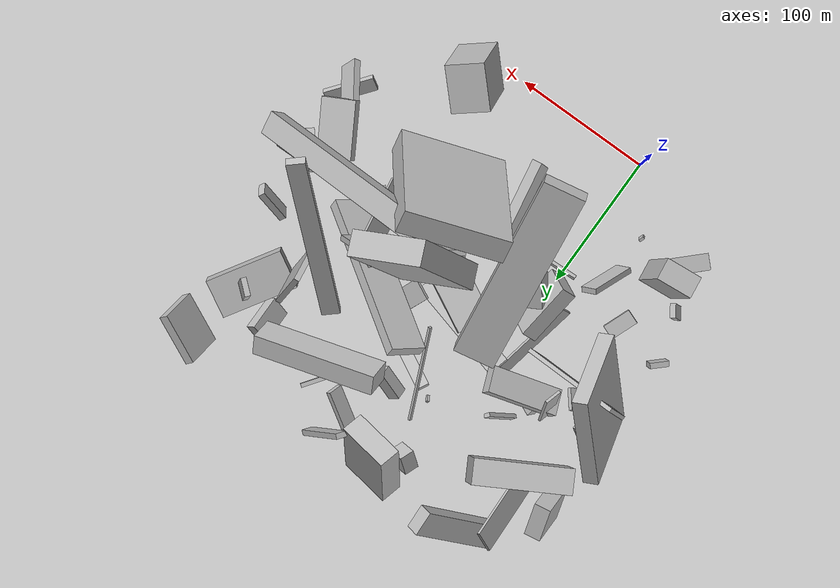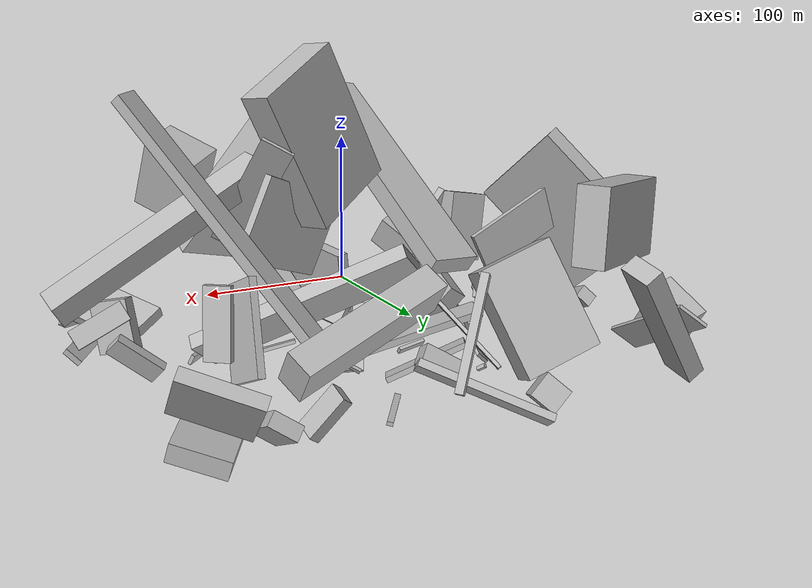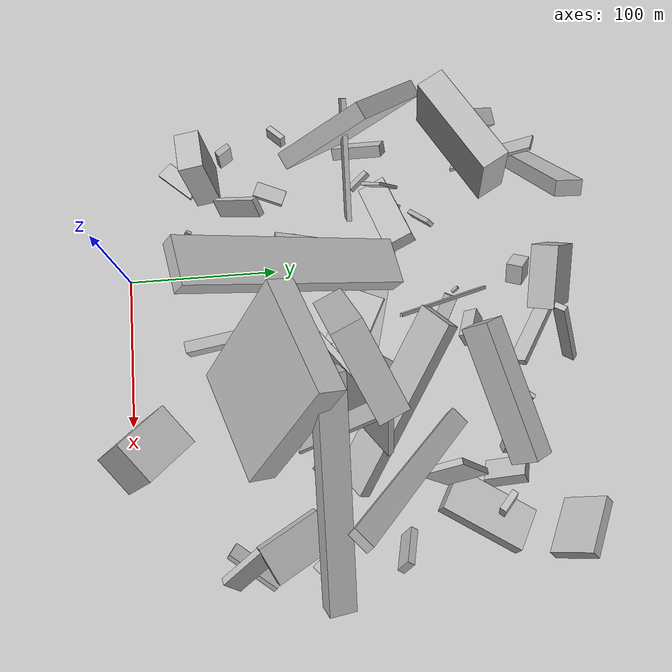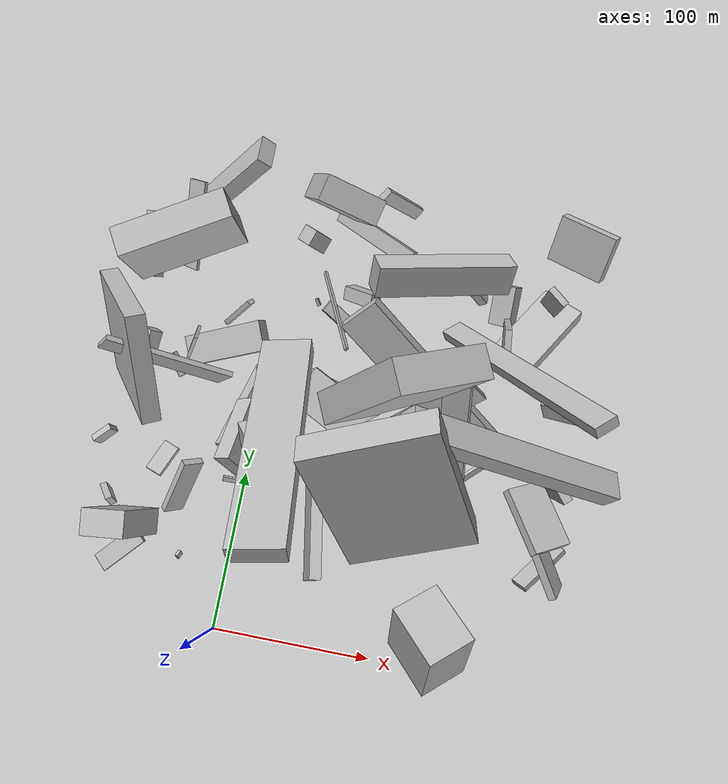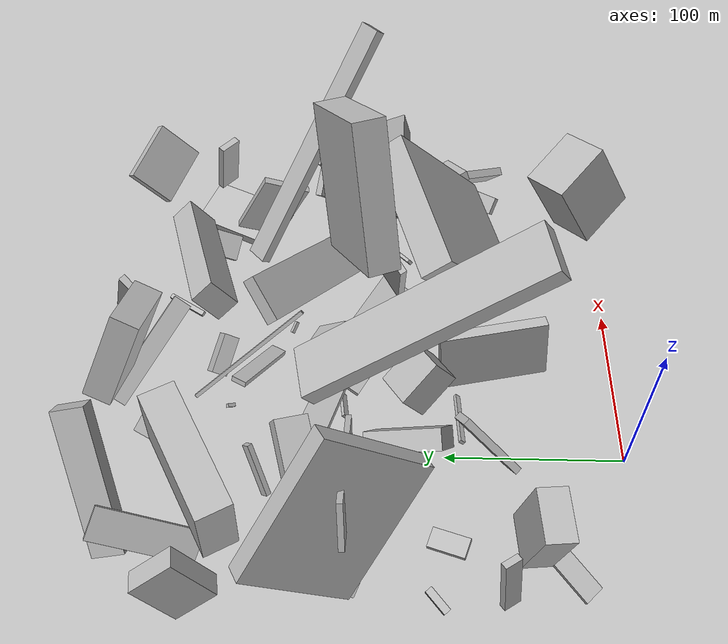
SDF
<sdf version="1.6">
 <world name="default">
  <model name="building_1">
   <static>0</static>
   <pose>-53.36776218531265 225.57407513473356 60.18739997213421 0.005135084856677283 -0.0797910758368502 0.5146011915310155</pose>
   <link name="link">
    <gravity>0</gravity>
    <pose>0 0 21.5 0 0 0</pose>
    <collision name="collision"><geometry><box><size>68 18 43</size></box></geometry></collision>
    <visual name="visual">
     <cast_shadows>0</cast_shadows>
     <geometry><box><size>68 18 43</size></box></geometry>
     <material>
      <script>
       <uri>model://HANNAS_wall/materials/scripts</uri>
       <uri>model://HANNAS_wall/materials/textures</uri>
       <name>vrc/HANNAS_wall</name>
      </script>
     </material>
    </visual>
   </link>
  </model>
  <model name="building_3">
   <static>0</static>
   <pose>198.75107616053248 79.6803190435957 21.185578072770227 0.4796749586401037 -0.6003453208512672 0.32458925809940675</pose>
   <link name="link">
    <gravity>0</gravity>
    <pose>0 0 7.5 0 0 0</pose>
    <collision name="collision"><geometry><box><size>5 33 15</size></box></geometry></collision>
    <visual name="visual">
     <cast_shadows>0</cast_shadows>
     <geometry><box><size>5 33 15</size></box></geometry>
     <material>
      <script>
       <uri>model://HANNAS_wall/materials/scripts</uri>
       <uri>model://HANNAS_wall/materials/textures</uri>
       <name>vrc/HANNAS_wall</name>
      </script>
     </material>
    </visual>
   </link>
  </model>
  <model name="building_8">
   <static>0</static>
   <pose>102.65849821187052 175.11031111418234 38.70035308174231 0.5453687690652936 -0.6083412496454647 0.6652943868384229</pose>
   <link name="link">
    <gravity>0</gravity>
    <pose>0 0 4.0 0 0 0</pose>
    <collision name="collision"><geometry><box><size>27 123 8</size></box></geometry></collision>
    <visual name="visual">
     <cast_shadows>0</cast_shadows>
     <geometry><box><size>27 123 8</size></box></geometry>
     <material>
      <script>
       <uri>model://HANNAS_wall/materials/scripts</uri>
       <uri>model://HANNAS_wall/materials/textures</uri>
       <name>vrc/HANNAS_wall</name>
      </script>
     </material>
    </visual>
   </link>
  </model>
  <model name="building_21">
   <static>0</static>
   <pose>110.93591590267224 76.60733210260125 53.27177881163373 0.3182430208783145 -0.6186728134676815 -1.4065448646998073</pose>
   <link name="link">
    <gravity>0</gravity>
    <pose>0 0 47.0 0 0 0</pose>
    <collision name="collision"><geometry><box><size>18 76 94</size></box></geometry></collision>
    <visual name="visual">
     <cast_shadows>0</cast_shadows>
     <geometry><box><size>18 76 94</size></box></geometry>
     <material>
      <script>
       <uri>model://HANNAS_wall/materials/scripts</uri>
       <uri>model://HANNAS_wall/materials/textures</uri>
       <name>vrc/HANNAS_wall</name>
      </script>
     </material>
    </visual>
   </link>
  </model>
  <model name="building_28">
   <static>0</static>
   <pose>101.53101039245655 234.386721790168 41.01600732419431 0.6299060999841484 -0.25945646761517815 -2.8453049823105316</pose>
   <link name="link">
    <gravity>0</gravity>
    <pose>0 0 10.5 0 0 0</pose>
    <collision name="collision"><geometry><box><size>90 15 21</size></box></geometry></collision>
    <visual name="visual">
     <cast_shadows>0</cast_shadows>
     <geometry><box><size>90 15 21</size></box></geometry>
     <material>
      <script>
       <uri>model://HANNAS_wall/materials/scripts</uri>
       <uri>model://HANNAS_wall/materials/textures</uri>
       <name>vrc/HANNAS_wall</name>
      </script>
     </material>
    </visual>
   </link>
  </model>
  <model name="building_35">
   <static>0</static>
   <pose>16.61682761326499 177.0175969989586 53.94088714772255 -0.963043995409521 0.08274046744521123 -2.9488357224455637</pose>
   <link name="link">
    <gravity>0</gravity>
    <pose>0 0 75.0 0 0 0</pose>
    <collision name="collision"><geometry><box><size>30 11 150</size></box></geometry></collision>
    <visual name="visual">
     <cast_shadows>0</cast_shadows>
     <geometry><box><size>30 11 150</size></box></geometry>
     <material>
      <script>
       <uri>model://HANNAS_wall/materials/scripts</uri>
       <uri>model://HANNAS_wall/materials/textures</uri>
       <name>vrc/HANNAS_wall</name>
      </script>
     </material>
    </visual>
   </link>
  </model>
  <model name="building_40">
   <static>0</static>
   <pose>159.2606686317211 123.14197695540746 84.69212079845002 1.9186344228700432 -0.5300730237977904 3.1108311479582635</pose>
   <link name="link">
    <gravity>0</gravity>
    <pose>0 0 8.5 0 0 0</pose>
    <collision name="collision"><geometry><box><size>150 13 17</size></box></geometry></collision>
    <visual name="visual">
     <cast_shadows>0</cast_shadows>
     <geometry><box><size>150 13 17</size></box></geometry>
     <material>
      <script>
       <uri>model://HANNAS_wall/materials/scripts</uri>
       <uri>model://HANNAS_wall/materials/textures</uri>
       <name>vrc/HANNAS_wall</name>
      </script>
     </material>
    </visual>
   </link>
  </model>
  <model name="building_54">
   <static>0</static>
   <pose>181.8676514341572 175.41729733745427 19.68815473272275 -0.5236336731921172 0.7681120469963143 -0.9246991510578163</pose>
   <link name="link">
    <gravity>0</gravity>
    <pose>0 0 13.5 0 0 0</pose>
    <collision name="collision"><geometry><box><size>11 5 27</size></box></geometry></collision>
    <visual name="visual">
     <cast_shadows>0</cast_shadows>
     <geometry><box><size>11 5 27</size></box></geometry>
     <material>
      <script>
       <uri>model://HANNAS_wall/materials/scripts</uri>
       <uri>model://HANNAS_wall/materials/textures</uri>
       <name>vrc/HANNAS_wall</name>
      </script>
     </material>
    </visual>
   </link>
  </model>
  <model name="building_61">
   <static>0</static>
   <pose>48.25286878235595 72.17020078281547 30.05929260214016 2.7585435378541177 -1.4101887134831845 0.5519163602482988</pose>
   <link name="link">
    <gravity>0</gravity>
    <pose>0 0 3.5 0 0 0</pose>
    <collision name="collision"><geometry><box><size>38 61 7</size></box></geometry></collision>
    <visual name="visual">
     <cast_shadows>0</cast_shadows>
     <geometry><box><size>38 61 7</size></box></geometry>
     <material>
      <script>
       <uri>model://HANNAS_wall/materials/scripts</uri>
       <uri>model://HANNAS_wall/materials/textures</uri>
       <name>vrc/HANNAS_wall</name>
      </script>
     </material>
    </visual>
   </link>
  </model>
  <model name="building_66">
   <static>0</static>
   <pose>-78.05641145028169 71.53232156924966 19.20280352145317 0.17397958655359533 -1.3687294361160585 0.409366198629548</pose>
   <link name="link">
    <gravity>0</gravity>
    <pose>0 0 2.0 0 0 0</pose>
    <collision name="collision"><geometry><box><size>36 10 4</size></box></geometry></collision>
    <visual name="visual">
     <cast_shadows>0</cast_shadows>
     <geometry><box><size>36 10 4</size></box></geometry>
     <material>
      <script>
       <uri>model://HANNAS_wall/materials/scripts</uri>
       <uri>model://HANNAS_wall/materials/textures</uri>
       <name>vrc/HANNAS_wall</name>
      </script>
     </material>
    </visual>
   </link>
  </model>
  <model name="building_68">
   <static>0</static>
   <pose>-21.83107361498681 169.05284238521926 27.191804475767267 -1.3329011319304773 -0.4172067426067291 0.2788204069491915</pose>
   <link name="link">
    <gravity>0</gravity>
    <pose>0 0 9.5 0 0 0</pose>
    <collision name="collision"><geometry><box><size>55 9 19</size></box></geometry></collision>
    <visual name="visual">
     <cast_shadows>0</cast_shadows>
     <geometry><box><size>55 9 19</size></box></geometry>
     <material>
      <script>
       <uri>model://HANNAS_wall/materials/scripts</uri>
       <uri>model://HANNAS_wall/materials/textures</uri>
       <name>vrc/HANNAS_wall</name>
      </script>
     </material>
    </visual>
   </link>
  </model>
  <model name="building_69">
   <static>0</static>
   <pose>144.716713322721 173.0198535050469 94.73106337022263 1.6790758403589527 -0.6931586198310506 2.2191635773913836</pose>
   <link name="link">
    <gravity>0</gravity>
    <pose>0 0 6.5 0 0 0</pose>
    <collision name="collision"><geometry><box><size>6 150 13</size></box></geometry></collision>
    <visual name="visual">
     <cast_shadows>0</cast_shadows>
     <geometry><box><size>6 150 13</size></box></geometry>
     <material>
      <script>
       <uri>model://HANNAS_wall/materials/scripts</uri>
       <uri>model://HANNAS_wall/materials/textures</uri>
       <name>vrc/HANNAS_wall</name>
      </script>
     </material>
    </visual>
   </link>
  </model>
  <model name="building_71">
   <static>0</static>
   <pose>-37.641706891555856 279.88515576375073 40.80216488281793 -0.3736389190792798 -0.8840930692906774 0.34830658059462927</pose>
   <link name="link">
    <gravity>0</gravity>
    <pose>0 0 5.0 0 0 0</pose>
    <collision name="collision"><geometry><box><size>80 18 10</size></box></geometry></collision>
    <visual name="visual">
     <cast_shadows>0</cast_shadows>
     <geometry><box><size>80 18 10</size></box></geometry>
     <material>
      <script>
       <uri>model://HANNAS_wall/materials/scripts</uri>
       <uri>model://HANNAS_wall/materials/textures</uri>
       <name>vrc/HANNAS_wall</name>
      </script>
     </material>
    </visual>
   </link>
  </model>
  <model name="building_76">
   <static>0</static>
   <pose>100.30201283076948 143.89131956683252 77.98191101141904 2.1476326550702627 -1.1629373063620656 -3.1396244967566234</pose>
   <link name="link">
    <gravity>0</gravity>
    <pose>0 0 2.0 0 0 0</pose>
    <collision name="collision"><geometry><box><size>46 74 4</size></box></geometry></collision>
    <visual name="visual">
     <cast_shadows>0</cast_shadows>
     <geometry><box><size>46 74 4</size></box></geometry>
     <material>
      <script>
       <uri>model://HANNAS_wall/materials/scripts</uri>
       <uri>model://HANNAS_wall/materials/textures</uri>
       <name>vrc/HANNAS_wall</name>
      </script>
     </material>
    </visual>
   </link>
  </model>
  <model name="building_77">
   <static>0</static>
   <pose>55.893056576074926 270.68057680887745 19.017828117942063 0.6235494192056638 -0.3771906883050145 -0.5699463628286029</pose>
   <link name="link">
    <gravity>0</gravity>
    <pose>0 0 2.0 0 0 0</pose>
    <collision name="collision"><geometry><box><size>68 11 4</size></box></geometry></collision>
    <visual name="visual">
     <cast_shadows>0</cast_shadows>
     <geometry><box><size>68 11 4</size></box></geometry>
     <material>
      <script>
       <uri>model://HANNAS_wall/materials/scripts</uri>
       <uri>model://HANNAS_wall/materials/textures</uri>
       <name>vrc/HANNAS_wall</name>
      </script>
     </material>
    </visual>
   </link>
  </model>
  <model name="building_80">
   <static>0</static>
   <pose>150.1084786514435 204.56701101617003 44.77803462018196 -1.7258124395621655 -0.42011984557755355 1.7308632940618938</pose>
   <link name="link">
    <gravity>0</gravity>
    <pose>0 0 2.0 0 0 0</pose>
    <collision name="collision"><geometry><box><size>28 48 4</size></box></geometry></collision>
    <visual name="visual">
     <cast_shadows>0</cast_shadows>
     <geometry><box><size>28 48 4</size></box></geometry>
     <material>
      <script>
       <uri>model://HANNAS_wall/materials/scripts</uri>
       <uri>model://HANNAS_wall/materials/textures</uri>
       <name>vrc/HANNAS_wall</name>
      </script>
     </material>
    </visual>
   </link>
  </model>
  <model name="building_86">
   <static>0</static>
   <pose>171.13391960652442 234.64274879236794 43.27141114211385 0.025303823608566884 -0.13691881675995074 0.8688041659400844</pose>
   <link name="link">
    <gravity>0</gravity>
    <pose>0 0 17.0 0 0 0</pose>
    <collision name="collision"><geometry><box><size>4 13 34</size></box></geometry></collision>
    <visual name="visual">
     <cast_shadows>0</cast_shadows>
     <geometry><box><size>4 13 34</size></box></geometry>
     <material>
      <script>
       <uri>model://HANNAS_wall/materials/scripts</uri>
       <uri>model://HANNAS_wall/materials/textures</uri>
       <name>vrc/HANNAS_wall</name>
      </script>
     </material>
    </visual>
   </link>
  </model>
  <model name="building_95">
   <static>0</static>
   <pose>136.32126585529647 34.70977068062794 84.58967165071245 -0.996205924533077 -1.080796136453192 1.7091394547000969</pose>
   <link name="link">
    <gravity>0</gravity>
    <pose>0 0 13.5 0 0 0</pose>
    <collision name="collision"><geometry><box><size>45 34 27</size></box></geometry></collision>
    <visual name="visual">
     <cast_shadows>0</cast_shadows>
     <geometry><box><size>45 34 27</size></box></geometry>
     <material>
      <script>
       <uri>model://HANNAS_wall/materials/scripts</uri>
       <uri>model://HANNAS_wall/materials/textures</uri>
       <name>vrc/HANNAS_wall</name>
      </script>
     </material>
    </visual>
   </link>
  </model>
  <model name="building_96">
   <static>0</static>
   <pose>-81.22834565462472 236.28625280654876 25.129851363802 -1.2189120335386516 -0.9432660817865177 1.4613693608311438</pose>
   <link name="link">
    <gravity>0</gravity>
    <pose>0 0 6.0 0 0 0</pose>
    <collision name="collision"><geometry><box><size>33 27 12</size></box></geometry></collision>
    <visual name="visual">
     <cast_shadows>0</cast_shadows>
     <geometry><box><size>33 27 12</size></box></geometry>
     <material>
      <script>
       <uri>model://HANNAS_wall/materials/scripts</uri>
       <uri>model://HANNAS_wall/materials/textures</uri>
       <name>vrc/HANNAS_wall</name>
      </script>
     </material>
    </visual>
   </link>
  </model>
  <model name="building_99">
   <static>0</static>
   <pose>185.92625620810335 267.4794803123719 31.370776294204227 0.44442635938538994 -0.6530556300421975 -2.3102272019659176</pose>
   <link name="link">
    <gravity>0</gravity>
    <pose>0 0 15.0 0 0 0</pose>
    <collision name="collision"><geometry><box><size>7 38 30</size></box></geometry></collision>
    <visual name="visual">
     <cast_shadows>0</cast_shadows>
     <geometry><box><size>7 38 30</size></box></geometry>
     <material>
      <script>
       <uri>model://HANNAS_wall/materials/scripts</uri>
       <uri>model://HANNAS_wall/materials/textures</uri>
       <name>vrc/HANNAS_wall</name>
      </script>
     </material>
    </visual>
   </link>
  </model>
  <model name="building_100">
   <static>0</static>
   <pose>78.32102854654107 91.78526639705524 22.069852737989564 0.5434381898414407 -0.1546068530086682 1.2475761199947524</pose>
   <link name="link">
    <gravity>0</gravity>
    <pose>0 0 10.5 0 0 0</pose>
    <collision name="collision"><geometry><box><size>11 17 21</size></box></geometry></collision>
    <visual name="visual">
     <cast_shadows>0</cast_shadows>
     <geometry><box><size>11 17 21</size></box></geometry>
     <material>
      <script>
       <uri>model://HANNAS_wall/materials/scripts</uri>
       <uri>model://HANNAS_wall/materials/textures</uri>
       <name>vrc/HANNAS_wall</name>
      </script>
     </material>
    </visual>
   </link>
  </model>
  <model name="building_101">
   <static>0</static>
   <pose>81.45658144735151 187.58107590421844 9.537307275435435 -2.143865880017114 -0.5194488251859757 -0.4693707088664595</pose>
   <link name="link">
    <gravity>0</gravity>
    <pose>0 0 1.0 0 0 0</pose>
    <collision name="collision"><geometry><box><size>7 2 2</size></box></geometry></collision>
    <visual name="visual">
     <cast_shadows>0</cast_shadows>
     <geometry><box><size>7 2 2</size></box></geometry>
     <material>
      <script>
       <uri>model://HANNAS_wall/materials/scripts</uri>
       <uri>model://HANNAS_wall/materials/textures</uri>
       <name>vrc/HANNAS_wall</name>
      </script>
     </material>
    </visual>
   </link>
  </model>
  <model name="building_105">
   <static>0</static>
   <pose>-67.16110091984183 132.88527577588485 51.60329485742245 0.8410681943479749 -0.319481746099414 -2.661896988755369</pose>
   <link name="link">
    <gravity>0</gravity>
    <pose>0 0 32.5 0 0 0</pose>
    <collision name="collision"><geometry><box><size>11 80 65</size></box></geometry></collision>
    <visual name="visual">
     <cast_shadows>0</cast_shadows>
     <geometry><box><size>11 80 65</size></box></geometry>
     <material>
      <script>
       <uri>model://HANNAS_wall/materials/scripts</uri>
       <uri>model://HANNAS_wall/materials/textures</uri>
       <name>vrc/HANNAS_wall</name>
      </script>
     </material>
    </visual>
   </link>
  </model>
  <model name="building_110">
   <static>0</static>
   <pose>-91.93895176396047 107.02397828629391 25.33589107603666 2.9063425497518263 0.23660243870230557 2.262020480280736</pose>
   <link name="link">
    <gravity>0</gravity>
    <pose>0 0 4.0 0 0 0</pose>
    <collision name="collision"><geometry><box><size>4 14 8</size></box></geometry></collision>
    <visual name="visual">
     <cast_shadows>0</cast_shadows>
     <geometry><box><size>4 14 8</size></box></geometry>
     <material>
      <script>
       <uri>model://HANNAS_wall/materials/scripts</uri>
       <uri>model://HANNAS_wall/materials/textures</uri>
       <name>vrc/HANNAS_wall</name>
      </script>
     </material>
    </visual>
   </link>
  </model>
  <model name="building_116">
   <static>0</static>
   <pose>184.0860208439916 220.06162916124575 14.10122422224774 -2.663261251723368 -1.2329030597180604 2.124243882308138</pose>
   <link name="link">
    <gravity>0</gravity>
    <pose>0 0 14.5 0 0 0</pose>
    <collision name="collision"><geometry><box><size>10 57 29</size></box></geometry></collision>
    <visual name="visual">
     <cast_shadows>0</cast_shadows>
     <geometry><box><size>10 57 29</size></box></geometry>
     <material>
      <script>
       <uri>model://HANNAS_wall/materials/scripts</uri>
       <uri>model://HANNAS_wall/materials/textures</uri>
       <name>vrc/HANNAS_wall</name>
      </script>
     </material>
    </visual>
   </link>
  </model>
  <model name="building_120">
   <static>0</static>
   <pose>2.7662741509849615 121.0643404616145 26.335459664180068 2.1837271387458563 -0.3065635609877434 -1.6754738760709056</pose>
   <link name="link">
    <gravity>0</gravity>
    <pose>0 0 6.0 0 0 0</pose>
    <collision name="collision"><geometry><box><size>43 26 12</size></box></geometry></collision>
    <visual name="visual">
     <cast_shadows>0</cast_shadows>
     <geometry><box><size>43 26 12</size></box></geometry>
     <material>
      <script>
       <uri>model://HANNAS_wall/materials/scripts</uri>
       <uri>model://HANNAS_wall/materials/textures</uri>
       <name>vrc/HANNAS_wall</name>
      </script>
     </material>
    </visual>
   </link>
  </model>
  <model name="building_123">
   <static>0</static>
   <pose>82.75763177641034 158.8817054913843 127.01717790140307 1.7463149724909488 -1.0943189522210346 0.2613005696470518</pose>
   <link name="link">
    <gravity>0</gravity>
    <pose>0 0 9.0 0 0 0</pose>
    <collision name="collision"><geometry><box><size>80 54 18</size></box></geometry></collision>
    <visual name="visual">
     <cast_shadows>0</cast_shadows>
     <geometry><box><size>80 54 18</size></box></geometry>
     <material>
      <script>
       <uri>model://HANNAS_wall/materials/scripts</uri>
       <uri>model://HANNAS_wall/materials/textures</uri>
       <name>vrc/HANNAS_wall</name>
      </script>
     </material>
    </visual>
   </link>
  </model>
  <model name="building_128">
   <static>0</static>
   <pose>-17.25056254982185 151.8076247022937 49.894114149132164 1.0905027987862734 -0.04605393903159527 -1.5699738683502613</pose>
   <link name="link">
    <gravity>0</gravity>
    <pose>0 0 37.5 0 0 0</pose>
    <collision name="collision"><geometry><box><size>3 26 75</size></box></geometry></collision>
    <visual name="visual">
     <cast_shadows>0</cast_shadows>
     <geometry><box><size>3 26 75</size></box></geometry>
     <material>
      <script>
       <uri>model://HANNAS_wall/materials/scripts</uri>
       <uri>model://HANNAS_wall/materials/textures</uri>
       <name>vrc/HANNAS_wall</name>
      </script>
     </material>
    </visual>
   </link>
  </model>
  <model name="building_130">
   <static>0</static>
   <pose>-17.0846916620351 114.30873471968417 19.419594150800442 -2.074241599401539 0.7209420970600462 -0.5321922868707994</pose>
   <link name="link">
    <gravity>0</gravity>
    <pose>0 0 33.0 0 0 0</pose>
    <collision name="collision"><geometry><box><size>2 9 66</size></box></geometry></collision>
    <visual name="visual">
     <cast_shadows>0</cast_shadows>
     <geometry><box><size>2 9 66</size></box></geometry>
     <material>
      <script>
       <uri>model://HANNAS_wall/materials/scripts</uri>
       <uri>model://HANNAS_wall/materials/textures</uri>
       <name>vrc/HANNAS_wall</name>
      </script>
     </material>
    </visual>
   </link>
  </model>
  <model name="building_131">
   <static>0</static>
   <pose>147.63194283558042 254.20339329657307 15.715379929078722 -2.2220772963687434 -0.7985183786190756 -2.6069816826753462</pose>
   <link name="link">
    <gravity>0</gravity>
    <pose>0 0 13.5 0 0 0</pose>
    <collision name="collision"><geometry><box><size>8 16 27</size></box></geometry></collision>
    <visual name="visual">
     <cast_shadows>0</cast_shadows>
     <geometry><box><size>8 16 27</size></box></geometry>
     <material>
      <script>
       <uri>model://HANNAS_wall/materials/scripts</uri>
       <uri>model://HANNAS_wall/materials/textures</uri>
       <name>vrc/HANNAS_wall</name>
      </script>
     </material>
    </visual>
   </link>
  </model>
  <model name="building_132">
   <static>0</static>
   <pose>123.8590788031019 248.04449941885778 13.98709961609223 0.9265519837999532 0.3138825484323095 1.607185182651236</pose>
   <link name="link">
    <gravity>0</gravity>
    <pose>0 0 3.0 0 0 0</pose>
    <collision name="collision"><geometry><box><size>12 24 6</size></box></geometry></collision>
    <visual name="visual">
     <cast_shadows>0</cast_shadows>
     <geometry><box><size>12 24 6</size></box></geometry>
     <material>
      <script>
       <uri>model://HANNAS_wall/materials/scripts</uri>
       <uri>model://HANNAS_wall/materials/textures</uri>
       <name>vrc/HANNAS_wall</name>
      </script>
     </material>
    </visual>
   </link>
  </model>
  <model name="building_134">
   <static>0</static>
   <pose>-70.24850119772972 255.0261795730985 23.391175182053914 0.8201441761564853 -0.486194016398132 1.577502596081623</pose>
   <link name="link">
    <gravity>0</gravity>
    <pose>0 0 9.0 0 0 0</pose>
    <collision name="collision"><geometry><box><size>57 2 18</size></box></geometry></collision>
    <visual name="visual">
     <cast_shadows>0</cast_shadows>
     <geometry><box><size>57 2 18</size></box></geometry>
     <material>
      <script>
       <uri>model://HANNAS_wall/materials/scripts</uri>
       <uri>model://HANNAS_wall/materials/textures</uri>
       <name>vrc/HANNAS_wall</name>
      </script>
     </material>
    </visual>
   </link>
  </model>
  <model name="building_144">
   <static>0</static>
   <pose>-48.63169016496398 181.44249881288553 18.83278070268338 -0.3307815887790831 0.49151204597085607 -1.8697076204499576</pose>
   <link name="link">
    <gravity>0</gravity>
    <pose>0 0 12.5 0 0 0</pose>
    <collision name="collision"><geometry><box><size>14 2 25</size></box></geometry></collision>
    <visual name="visual">
     <cast_shadows>0</cast_shadows>
     <geometry><box><size>14 2 25</size></box></geometry>
     <material>
      <script>
       <uri>model://HANNAS_wall/materials/scripts</uri>
       <uri>model://HANNAS_wall/materials/textures</uri>
       <name>vrc/HANNAS_wall</name>
      </script>
     </material>
    </visual>
   </link>
  </model>
  <model name="building_147">
   <static>0</static>
   <pose>69.06704578013968 172.05391524408645 10.98370194433824 1.6096756765160534 0.7146080720124205 1.1495276205265734</pose>
   <link name="link">
    <gravity>0</gravity>
    <pose>0 0 8.0 0 0 0</pose>
    <collision name="collision"><geometry><box><size>23 2 16</size></box></geometry></collision>
    <visual name="visual">
     <cast_shadows>0</cast_shadows>
     <geometry><box><size>23 2 16</size></box></geometry>
     <material>
      <script>
       <uri>model://HANNAS_wall/materials/scripts</uri>
       <uri>model://HANNAS_wall/materials/textures</uri>
       <name>vrc/HANNAS_wall</name>
      </script>
     </material>
    </visual>
   </link>
  </model>
  <model name="building_152">
   <static>0</static>
   <pose>37.15009131144617 171.98267400626898 14.72088191060895 -1.5535607504057238 -0.26605776770707507 2.88915497331432</pose>
   <link name="link">
    <gravity>0</gravity>
    <pose>0 0 8.0 0 0 0</pose>
    <collision name="collision"><geometry><box><size>80 4 16</size></box></geometry></collision>
    <visual name="visual">
     <cast_shadows>0</cast_shadows>
     <geometry><box><size>80 4 16</size></box></geometry>
     <material>
      <script>
       <uri>model://HANNAS_wall/materials/scripts</uri>
       <uri>model://HANNAS_wall/materials/textures</uri>
       <name>vrc/HANNAS_wall</name>
      </script>
     </material>
    </visual>
   </link>
  </model>
  <model name="building_158">
   <static>0</static>
   <pose>79.12887880903972 287.2112815276695 29.904324266721517 -0.15013269761229203 -0.45610809771608873 0.911082300610371</pose>
   <link name="link">
    <gravity>0</gravity>
    <pose>0 0 27.5 0 0 0</pose>
    <collision name="collision"><geometry><box><size>8 4 55</size></box></geometry></collision>
    <visual name="visual">
     <cast_shadows>0</cast_shadows>
     <geometry><box><size>8 4 55</size></box></geometry>
     <material>
      <script>
       <uri>model://HANNAS_wall/materials/scripts</uri>
       <uri>model://HANNAS_wall/materials/textures</uri>
       <name>vrc/HANNAS_wall</name>
      </script>
     </material>
    </visual>
   </link>
  </model>
  <model name="building_159">
   <static>0</static>
   <pose>105.39765411258874 133.73589662921412 6.26494449467561 0.23582408520816733 -0.17290632359513664 1.224179978366894</pose>
   <link name="link">
    <gravity>0</gravity>
    <pose>0 0 1.0 0 0 0</pose>
    <collision name="collision"><geometry><box><size>5 25 2</size></box></geometry></collision>
    <visual name="visual">
     <cast_shadows>0</cast_shadows>
     <geometry><box><size>5 25 2</size></box></geometry>
     <material>
      <script>
       <uri>model://HANNAS_wall/materials/scripts</uri>
       <uri>model://HANNAS_wall/materials/textures</uri>
       <name>vrc/HANNAS_wall</name>
      </script>
     </material>
    </visual>
   </link>
  </model>
  <model name="building_162">
   <static>0</static>
   <pose>-35.786969704040715 184.16731218360616 10.60647583548509 -2.4513310368778853 -0.31926264247470343 2.718556037399454</pose>
   <link name="link">
    <gravity>0</gravity>
    <pose>0 0 4.0 0 0 0</pose>
    <collision name="collision"><geometry><box><size>8 9 8</size></box></geometry></collision>
    <visual name="visual">
     <cast_shadows>0</cast_shadows>
     <geometry><box><size>8 9 8</size></box></geometry>
     <material>
      <script>
       <uri>model://HANNAS_wall/materials/scripts</uri>
       <uri>model://HANNAS_wall/materials/textures</uri>
       <name>vrc/HANNAS_wall</name>
      </script>
     </material>
    </visual>
   </link>
  </model>
  <model name="building_164">
   <static>0</static>
   <pose>-31.73710454002525 69.23872572869112 48.26859019883457 0.7560128797627421 0.415869724377767 2.3354869756774628</pose>
   <link name="link">
    <gravity>0</gravity>
    <pose>0 0 20.0 0 0 0</pose>
    <collision name="collision"><geometry><box><size>4 12 40</size></box></geometry></collision>
    <visual name="visual">
     <cast_shadows>0</cast_shadows>
     <geometry><box><size>4 12 40</size></box></geometry>
     <material>
      <script>
       <uri>model://HANNAS_wall/materials/scripts</uri>
       <uri>model://HANNAS_wall/materials/textures</uri>
       <name>vrc/HANNAS_wall</name>
      </script>
     </material>
    </visual>
   </link>
  </model>
  <model name="building_165">
   <static>0</static>
   <pose>-80.50423605520352 164.5352678751173 14.819807502530711 -0.47306015619675124 -0.6881677861463842 -2.9864832199433162</pose>
   <link name="link">
    <gravity>0</gravity>
    <pose>0 0 5.0 0 0 0</pose>
    <collision name="collision"><geometry><box><size>8 35 10</size></box></geometry></collision>
    <visual name="visual">
     <cast_shadows>0</cast_shadows>
     <geometry><box><size>8 35 10</size></box></geometry>
     <material>
      <script>
       <uri>model://HANNAS_wall/materials/scripts</uri>
       <uri>model://HANNAS_wall/materials/textures</uri>
       <name>vrc/HANNAS_wall</name>
      </script>
     </material>
    </visual>
   </link>
  </model>
  <model name="building_172">
   <static>0</static>
   <pose>70.62790207340268 131.19605097554842 16.097893593051307 -0.5466544869776707 0.2844980723173961 2.246259875672515</pose>
   <link name="link">
    <gravity>0</gravity>
    <pose>0 0 8.0 0 0 0</pose>
    <collision name="collision"><geometry><box><size>14 6 16</size></box></geometry></collision>
    <visual name="visual">
     <cast_shadows>0</cast_shadows>
     <geometry><box><size>14 6 16</size></box></geometry>
     <material>
      <script>
       <uri>model://HANNAS_wall/materials/scripts</uri>
       <uri>model://HANNAS_wall/materials/textures</uri>
       <name>vrc/HANNAS_wall</name>
      </script>
     </material>
    </visual>
   </link>
  </model>
  <model name="building_173">
   <static>0</static>
   <pose>-31.85245680285756 39.45986302267002 4.277583077687249 2.432134087836567 -1.0349869981542252 1.9968444903566254</pose>
   <link name="link">
    <gravity>0</gravity>
    <pose>0 0 2.0 0 0 0</pose>
    <collision name="collision"><geometry><box><size>4 2 4</size></box></geometry></collision>
    <visual name="visual">
     <cast_shadows>0</cast_shadows>
     <geometry><box><size>4 2 4</size></box></geometry>
     <material>
      <script>
       <uri>model://HANNAS_wall/materials/scripts</uri>
       <uri>model://HANNAS_wall/materials/textures</uri>
       <name>vrc/HANNAS_wall</name>
      </script>
     </material>
    </visual>
   </link>
  </model>
  <model name="building_174">
   <static>0</static>
   <pose>53.47248147888069 223.39375102025693 17.533730867356876 0.7646336921199954 -0.7684886348387754 -2.494500856785539</pose>
   <link name="link">
    <gravity>0</gravity>
    <pose>0 0 4.5 0 0 0</pose>
    <collision name="collision"><geometry><box><size>10 23 9</size></box></geometry></collision>
    <visual name="visual">
     <cast_shadows>0</cast_shadows>
     <geometry><box><size>10 23 9</size></box></geometry>
     <material>
      <script>
       <uri>model://HANNAS_wall/materials/scripts</uri>
       <uri>model://HANNAS_wall/materials/textures</uri>
       <name>vrc/HANNAS_wall</name>
      </script>
     </material>
    </visual>
   </link>
  </model>
  <model name="building_175">
   <static>0</static>
   <pose>-60.58295880259891 47.868425923369585 42.188849573103525 1.1114833369809758 -1.3681489709553527 -2.5665389874598015</pose>
   <link name="link">
    <gravity>0</gravity>
    <pose>0 0 8.0 0 0 0</pose>
    <collision name="collision"><geometry><box><size>45 27 16</size></box></geometry></collision>
    <visual name="visual">
     <cast_shadows>0</cast_shadows>
     <geometry><box><size>45 27 16</size></box></geometry>
     <material>
      <script>
       <uri>model://HANNAS_wall/materials/scripts</uri>
       <uri>model://HANNAS_wall/materials/textures</uri>
       <name>vrc/HANNAS_wall</name>
      </script>
     </material>
    </visual>
   </link>
  </model>
  <model name="building_185">
   <static>0</static>
   <pose>200.82701367919827 135.13169119285004 34.49498830582745 -0.7476005733130332 -0.9064738507509321 -0.9400358544226318</pose>
   <link name="link">
    <gravity>0</gravity>
    <pose>0 0 1.0 0 0 0</pose>
    <collision name="collision"><geometry><box><size>11 30 2</size></box></geometry></collision>
    <visual name="visual">
     <cast_shadows>0</cast_shadows>
     <geometry><box><size>11 30 2</size></box></geometry>
     <material>
      <script>
       <uri>model://HANNAS_wall/materials/scripts</uri>
       <uri>model://HANNAS_wall/materials/textures</uri>
       <name>vrc/HANNAS_wall</name>
      </script>
     </material>
    </visual>
   </link>
  </model>
  <model name="building_186">
   <static>0</static>
   <pose>-21.899657124357468 202.2404696887611 22.761847079117118 0.9060176675530105 0.20531531547856852 -0.7790579212361646</pose>
   <link name="link">
    <gravity>0</gravity>
    <pose>0 0 2.5 0 0 0</pose>
    <collision name="collision"><geometry><box><size>3 30 5</size></box></geometry></collision>
    <visual name="visual">
     <cast_shadows>0</cast_shadows>
     <geometry><box><size>3 30 5</size></box></geometry>
     <material>
      <script>
       <uri>model://HANNAS_wall/materials/scripts</uri>
       <uri>model://HANNAS_wall/materials/textures</uri>
       <name>vrc/HANNAS_wall</name>
      </script>
     </material>
    </visual>
   </link>
  </model>
  <model name="building_190">
   <static>0</static>
   <pose>144.9973137746335 126.84114127194974 9.586819966280805 2.085074480314259 -0.03601990643628046 -2.3850486111681746</pose>
   <link name="link">
    <gravity>0</gravity>
    <pose>0 0 1.0 0 0 0</pose>
    <collision name="collision"><geometry><box><size>26 6 2</size></box></geometry></collision>
    <visual name="visual">
     <cast_shadows>0</cast_shadows>
     <geometry><box><size>26 6 2</size></box></geometry>
     <material>
      <script>
       <uri>model://HANNAS_wall/materials/scripts</uri>
       <uri>model://HANNAS_wall/materials/textures</uri>
       <name>vrc/HANNAS_wall</name>
      </script>
     </material>
    </visual>
   </link>
  </model>
  <model name="building_192">
   <static>0</static>
   <pose>39.68611486442458 210.26958287325056 40.82709316999124 2.4464258103010312 -0.6105127433370322 -1.1645531572279197</pose>
   <link name="link">
    <gravity>0</gravity>
    <pose>0 0 1.0 0 0 0</pose>
    <collision name="collision"><geometry><box><size>80 2 2</size></box></geometry></collision>
    <visual name="visual">
     <cast_shadows>0</cast_shadows>
     <geometry><box><size>80 2 2</size></box></geometry>
     <material>
      <script>
       <uri>model://HANNAS_wall/materials/scripts</uri>
       <uri>model://HANNAS_wall/materials/textures</uri>
       <name>vrc/HANNAS_wall</name>
      </script>
     </material>
    </visual>
   </link>
  </model>
  <model name="building_195">
   <static>0</static>
   <pose>49.452493868916555 206.9593724525231 13.047607384968492 -0.023460802431033097 -0.4502869226525126 2.6663658292484005</pose>
   <link name="link">
    <gravity>0</gravity>
    <pose>0 0 1.5 0 0 0</pose>
    <collision name="collision"><geometry><box><size>45 9 3</size></box></geometry></collision>
    <visual name="visual">
     <cast_shadows>0</cast_shadows>
     <geometry><box><size>45 9 3</size></box></geometry>
     <material>
      <script>
       <uri>model://HANNAS_wall/materials/scripts</uri>
       <uri>model://HANNAS_wall/materials/textures</uri>
       <name>vrc/HANNAS_wall</name>
      </script>
     </material>
    </visual>
   </link>
  </model>
  <model name="building_197">
   <static>0</static>
   <pose>-0.025442064927895247 114.52741545829831 6.161088037499722 1.6310990344190857 -0.6054267830001285 -1.8009297935421855</pose>
   <link name="link">
    <gravity>0</gravity>
    <pose>0 0 1.0 0 0 0</pose>
    <collision name="collision"><geometry><box><size>2 4 2</size></box></geometry></collision>
    <visual name="visual">
     <cast_shadows>0</cast_shadows>
     <geometry><box><size>2 4 2</size></box></geometry>
     <material>
      <script>
       <uri>model://HANNAS_wall/materials/scripts</uri>
       <uri>model://HANNAS_wall/materials/textures</uri>
       <name>vrc/HANNAS_wall</name>
      </script>
     </material>
    </visual>
   </link>
  </model>
  <model name="building_198">
   <static>0</static>
   <pose>18.389579120244257 260.54627134439187 15.131370484219914 2.667428740955498 -0.8011546219859309 3.1120409913090246</pose>
   <link name="link">
    <gravity>0</gravity>
    <pose>0 0 7.5 0 0 0</pose>
    <collision name="collision"><geometry><box><size>14 11 15</size></box></geometry></collision>
    <visual name="visual">
     <cast_shadows>0</cast_shadows>
     <geometry><box><size>14 11 15</size></box></geometry>
     <material>
      <script>
       <uri>model://HANNAS_wall/materials/scripts</uri>
       <uri>model://HANNAS_wall/materials/textures</uri>
       <name>vrc/HANNAS_wall</name>
      </script>
     </material>
    </visual>
   </link>
  </model>
  <model name="building_199">
   <static>0</static>
   <pose>30.292970160500577 267.4699851545795 56.45540325018871 -0.8258105710551893 -1.063799062947648 -0.9391698531663575</pose>
   <link name="link">
    <gravity>0</gravity>
    <pose>0 0 8.0 0 0 0</pose>
    <collision name="collision"><geometry><box><size>54 38 16</size></box></geometry></collision>
    <visual name="visual">
     <cast_shadows>0</cast_shadows>
     <geometry><box><size>54 38 16</size></box></geometry>
     <material>
      <script>
       <uri>model://HANNAS_wall/materials/scripts</uri>
       <uri>model://HANNAS_wall/materials/textures</uri>
       <name>vrc/HANNAS_wall</name>
      </script>
     </material>
    </visual>
   </link>
  </model>
  <model name="building_201">
   <static>0</static>
   <pose>101.8610918023011 265.1160994117263 12.070957777250605 -1.0988418283706944 -1.3401964280535295 2.058757604933624</pose>
   <link name="link">
    <gravity>0</gravity>
    <pose>0 0 13.5 0 0 0</pose>
    <collision name="collision"><geometry><box><size>2 3 27</size></box></geometry></collision>
    <visual name="visual">
     <cast_shadows>0</cast_shadows>
     <geometry><box><size>2 3 27</size></box></geometry>
     <material>
      <script>
       <uri>model://HANNAS_wall/materials/scripts</uri>
       <uri>model://HANNAS_wall/materials/textures</uri>
       <name>vrc/HANNAS_wall</name>
      </script>
     </material>
    </visual>
   </link>
  </model>
  <model name="building_210">
   <static>0</static>
   <pose>-63.245758315239726 34.11492669335966 9.840544758802492 -1.5798770636270996 -0.3399169841436623 0.7807270239246444</pose>
   <link name="link">
    <gravity>0</gravity>
    <pose>0 0 6.0 0 0 0</pose>
    <collision name="collision"><geometry><box><size>35 2 12</size></box></geometry></collision>
    <visual name="visual">
     <cast_shadows>0</cast_shadows>
     <geometry><box><size>35 2 12</size></box></geometry>
     <material>
      <script>
       <uri>model://HANNAS_wall/materials/scripts</uri>
       <uri>model://HANNAS_wall/materials/textures</uri>
       <name>vrc/HANNAS_wall</name>
      </script>
     </material>
    </visual>
   </link>
  </model>
  <model name="building_216">
   <static>0</static>
   <pose>125.00180346859327 116.01242104086342 65.24475912461197 -0.5657808347900947 0.47753798879660597 0.8348133179411596</pose>
   <link name="link">
    <gravity>0</gravity>
    <pose>0 0 40.0 0 0 0</pose>
    <collision name="collision"><geometry><box><size>2 18 80</size></box></geometry></collision>
    <visual name="visual">
     <cast_shadows>0</cast_shadows>
     <geometry><box><size>2 18 80</size></box></geometry>
     <material>
      <script>
       <uri>model://HANNAS_wall/materials/scripts</uri>
       <uri>model://HANNAS_wall/materials/textures</uri>
       <name>vrc/HANNAS_wall</name>
      </script>
     </material>
    </visual>
   </link>
  </model>
  <model name="building_218">
   <static>0</static>
   <pose>194.94893121121908 77.8383548275776 8.679820764051518 2.89148693453048 -0.7492575700405044 -0.5102220415912889</pose>
   <link name="link">
    <gravity>0</gravity>
    <pose>0 0 2.0 0 0 0</pose>
    <collision name="collision"><geometry><box><size>11 37 4</size></box></geometry></collision>
    <visual name="visual">
     <cast_shadows>0</cast_shadows>
     <geometry><box><size>11 37 4</size></box></geometry>
     <material>
      <script>
       <uri>model://HANNAS_wall/materials/scripts</uri>
       <uri>model://HANNAS_wall/materials/textures</uri>
       <name>vrc/HANNAS_wall</name>
      </script>
     </material>
    </visual>
   </link>
  </model>
  <model name="building_219">
   <static>0</static>
   <pose>25.798006757526945 218.91662182809262 9.600321900233572 0.9265541680085957 0.4691325786123522 -2.9096241814183137</pose>
   <link name="link">
    <gravity>0</gravity>
    <pose>0 0 2.5 0 0 0</pose>
    <collision name="collision"><geometry><box><size>2 2 5</size></box></geometry></collision>
    <visual name="visual">
     <cast_shadows>0</cast_shadows>
     <geometry><box><size>2 2 5</size></box></geometry>
     <material>
      <script>
       <uri>model://HANNAS_wall/materials/scripts</uri>
       <uri>model://HANNAS_wall/materials/textures</uri>
       <name>vrc/HANNAS_wall</name>
      </script>
     </material>
    </visual>
   </link>
  </model>
  <model name="building_220">
   <static>0</static>
   <pose>63.69679100327349 141.3928762482121 30.98667915650981 -3.0854561497033175 -0.3068604091891173 1.0794181086635406</pose>
   <link name="link">
    <gravity>0</gravity>
    <pose>0 0 1.0 0 0 0</pose>
    <collision name="collision"><geometry><box><size>27 80 2</size></box></geometry></collision>
    <visual name="visual">
     <cast_shadows>0</cast_shadows>
     <geometry><box><size>27 80 2</size></box></geometry>
     <material>
      <script>
       <uri>model://HANNAS_wall/materials/scripts</uri>
       <uri>model://HANNAS_wall/materials/textures</uri>
       <name>vrc/HANNAS_wall</name>
      </script>
     </material>
    </visual>
   </link>
  </model>
  <model name="building_223">
   <static>0</static>
   <pose>5.3298584214058575 111.17102615589795 59.87848212181454 -1.994155408031637 0.9142844964899822 -1.3976055006722494</pose>
   <link name="link">
    <gravity>0</gravity>
    <pose>0 0 11.0 0 0 0</pose>
    <collision name="collision"><geometry><box><size>18 26 22</size></box></geometry></collision>
    <visual name="visual">
     <cast_shadows>0</cast_shadows>
     <geometry><box><size>18 26 22</size></box></geometry>
     <material>
      <script>
       <uri>model://HANNAS_wall/materials/scripts</uri>
       <uri>model://HANNAS_wall/materials/textures</uri>
       <name>vrc/HANNAS_wall</name>
      </script>
     </material>
    </visual>
   </link>
  </model>
  <model name="building_227">
   <static>0</static>
   <pose>174.58066150863235 122.8539434068075 25.870475183367404 -1.3711000969550937 -0.4409914477563757 -2.696100930033863</pose>
   <link name="link">
    <gravity>0</gravity>
    <pose>0 0 21.0 0 0 0</pose>
    <collision name="collision"><geometry><box><size>27 6 42</size></box></geometry></collision>
    <visual name="visual">
     <cast_shadows>0</cast_shadows>
     <geometry><box><size>27 6 42</size></box></geometry>
     <material>
      <script>
       <uri>model://HANNAS_wall/materials/scripts</uri>
       <uri>model://HANNAS_wall/materials/textures</uri>
       <name>vrc/HANNAS_wall</name>
      </script>
     </material>
    </visual>
   </link>
  </model>
  <model name="building_233">
   <static>0</static>
   <pose>7.692297475948948 94.02633086517163 28.12914662225583 0.2552417560044039 -0.6324269416253842 1.4524586943954958</pose>
   <link name="link">
    <gravity>0</gravity>
    <pose>0 0 1.0 0 0 0</pose>
    <collision name="collision"><geometry><box><size>3 34 2</size></box></geometry></collision>
    <visual name="visual">
     <cast_shadows>0</cast_shadows>
     <geometry><box><size>3 34 2</size></box></geometry>
     <material>
      <script>
       <uri>model://HANNAS_wall/materials/scripts</uri>
       <uri>model://HANNAS_wall/materials/textures</uri>
       <name>vrc/HANNAS_wall</name>
      </script>
     </material>
    </visual>
   </link>
  </model>
  <model name="building_237">
   <static>0</static>
   <pose>198.36147692817102 119.57683165680145 28.327975131664658 0.2197515112834867 -1.3421245848989882 -1.0729905995924065</pose>
   <link name="link">
    <gravity>0</gravity>
    <pose>0 0 11.5 0 0 0</pose>
    <collision name="collision"><geometry><box><size>28 6 23</size></box></geometry></collision>
    <visual name="visual">
     <cast_shadows>0</cast_shadows>
     <geometry><box><size>28 6 23</size></box></geometry>
     <material>
      <script>
       <uri>model://HANNAS_wall/materials/scripts</uri>
       <uri>model://HANNAS_wall/materials/textures</uri>
       <name>vrc/HANNAS_wall</name>
      </script>
     </material>
    </visual>
   </link>
  </model>
  <model name="building_238">
   <static>0</static>
   <pose>-58.51045095219018 160.74511220005093 12.106184918391557 -2.385471942925169 0.23047615727583357 -0.9001825381888786</pose>
   <link name="link">
    <gravity>0</gravity>
    <pose>0 0 1.5 0 0 0</pose>
    <collision name="collision"><geometry><box><size>16 6 3</size></box></geometry></collision>
    <visual name="visual">
     <cast_shadows>0</cast_shadows>
     <geometry><box><size>16 6 3</size></box></geometry>
     <material>
      <script>
       <uri>model://HANNAS_wall/materials/scripts</uri>
       <uri>model://HANNAS_wall/materials/textures</uri>
       <name>vrc/HANNAS_wall</name>
      </script>
     </material>
    </visual>
   </link>
  </model>
  <model name="building_252">
   <static>0</static>
   <pose>-58.01390183878356 89.6147462027426 8.996083807940138 -1.7035328854576497 -0.15312107303569508 -0.3456798518629674</pose>
   <link name="link">
    <gravity>0</gravity>
    <pose>0 0 10.5 0 0 0</pose>
    <collision name="collision"><geometry><box><size>11 3 21</size></box></geometry></collision>
    <visual name="visual">
     <cast_shadows>0</cast_shadows>
     <geometry><box><size>11 3 21</size></box></geometry>
     <material>
      <script>
       <uri>model://HANNAS_wall/materials/scripts</uri>
       <uri>model://HANNAS_wall/materials/textures</uri>
       <name>vrc/HANNAS_wall</name>
      </script>
     </material>
    </visual>
   </link>
  </model>
  <model name="building_255">
   <static>0</static>
   <pose>31.246231933017395 156.0374195193083 3.845917000907404 -2.9396623297037454 -0.8844377591630117 1.5333477369282706</pose>
   <link name="link">
    <gravity>0</gravity>
    <pose>0 0 1.0 0 0 0</pose>
    <collision name="collision"><geometry><box><size>4 17 2</size></box></geometry></collision>
    <visual name="visual">
     <cast_shadows>0</cast_shadows>
     <geometry><box><size>4 17 2</size></box></geometry>
     <material>
      <script>
       <uri>model://HANNAS_wall/materials/scripts</uri>
       <uri>model://HANNAS_wall/materials/textures</uri>
       <name>vrc/HANNAS_wall</name>
      </script>
     </material>
    </visual>
   </link>
  </model>
 </world>
</sdf>
